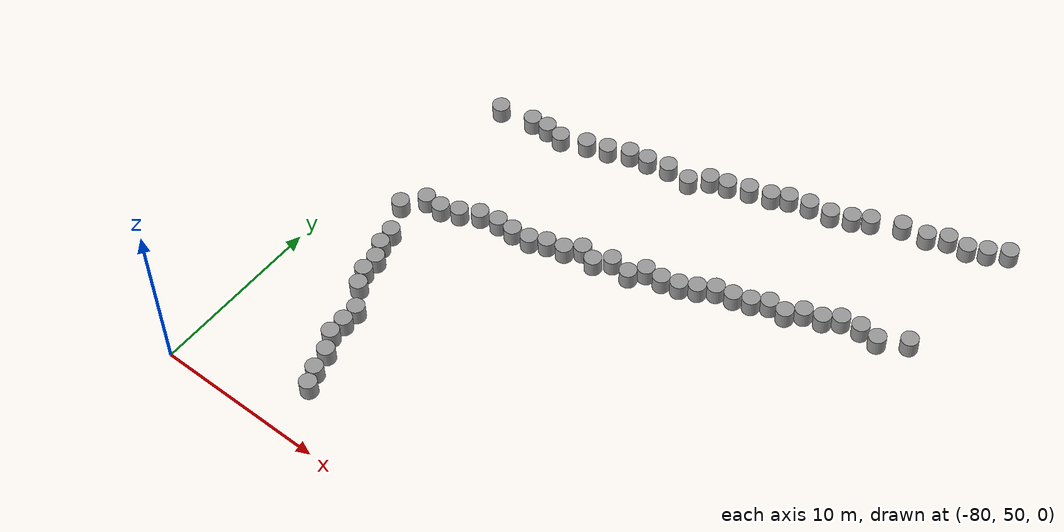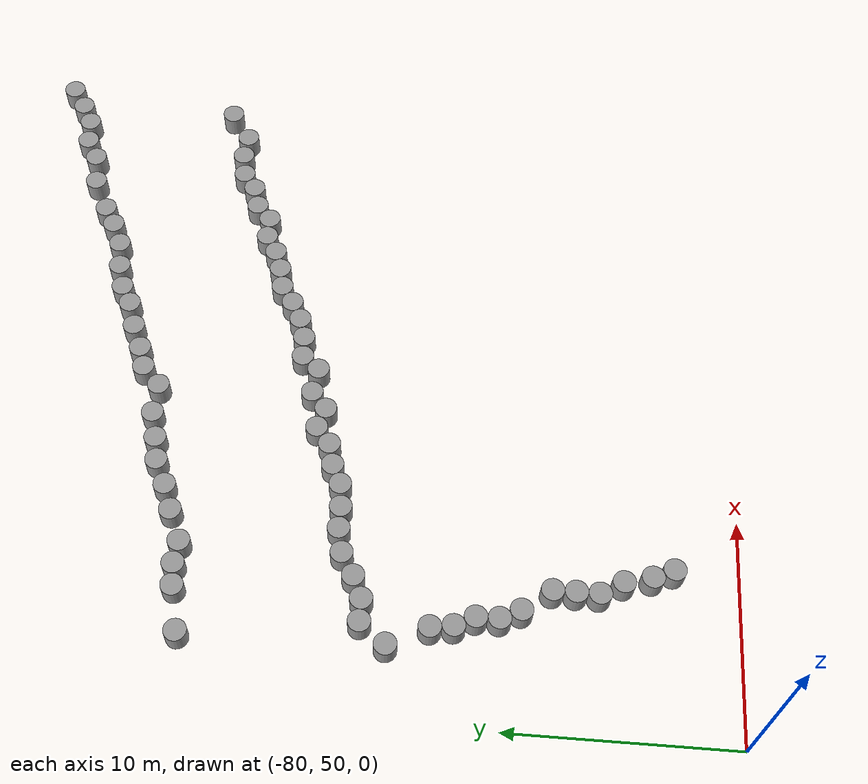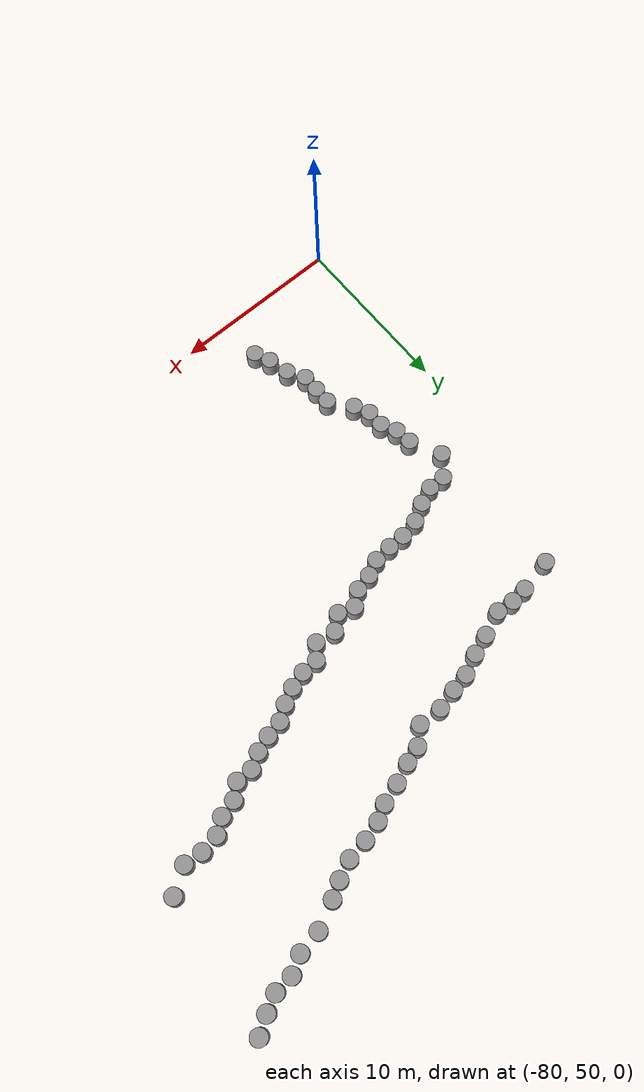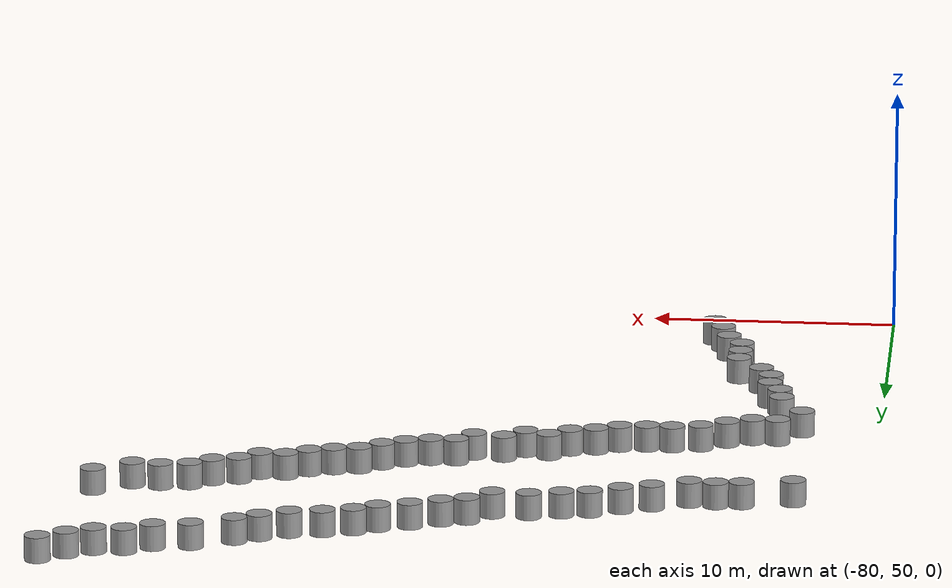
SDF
<sdf version="1.7">
 <world name="default">
  <model name="unit_cylinder_85_clone_12">
   <pose>-49.7823 74.5502 0.451242 8.3e-05 4.3e-05 -0.170976</pose>
   <link name="link">
    <inertial>
     <mass>1</mass>
     <inertia><ixx>0.145833</ixx><ixy>0</ixy><ixz>0</ixz><iyy>0.145833</iyy><iyz>0</iyz><izz>0.125</izz></inertia>
    </inertial>
    <collision name="collision">
     <geometry><cylinder><radius>0.5</radius><length>1</length></cylinder></geometry>
    </collision>
    <visual name="visual">
     <geometry><cylinder><radius>0.5</radius><length>1</length></cylinder></geometry>
     <material>
      <script><name>Gazebo/Grey</name><uri>file://media/materials/scripts/gazebo.material</uri></script>
     </material>
    </visual>
   </link>
  </model>
  <model name="unit_cylinder_85_clone_14">
   <pose>-51.2116 73.6203 0.451197 6.7e-05 2.4e-05 -0.036272</pose>
   <link name="link">
    <inertial>
     <mass>1</mass>
     <inertia><ixx>0.145833</ixx><ixy>0</ixy><ixz>0</ixz><iyy>0.145833</iyy><iyz>0</iyz><izz>0.125</izz></inertia>
    </inertial>
    <collision name="collision">
     <geometry><cylinder><radius>0.5</radius><length>1</length></cylinder></geometry>
    </collision>
    <visual name="visual">
     <geometry><cylinder><radius>0.5</radius><length>1</length></cylinder></geometry>
     <material>
      <script><name>Gazebo/Grey</name><uri>file://media/materials/scripts/gazebo.material</uri></script>
     </material>
    </visual>
   </link>
  </model>
  <model name="unit_cylinder_85_clone_15">
   <pose>-52.3258 73.7201 0.45124 9.2e-05 2.9e-05 -0.000174</pose>
   <link name="link">
    <inertial>
     <mass>1</mass>
     <inertia><ixx>0.145833</ixx><ixy>0</ixy><ixz>0</ixz><iyy>0.145833</iyy><iyz>0</iyz><izz>0.125</izz></inertia>
    </inertial>
    <collision name="collision">
     <geometry><cylinder><radius>0.5</radius><length>1</length></cylinder></geometry>
    </collision>
    <visual name="visual">
     <geometry><cylinder><radius>0.5</radius><length>1</length></cylinder></geometry>
     <material>
      <script><name>Gazebo/Grey</name><uri>file://media/materials/scripts/gazebo.material</uri></script>
     </material>
    </visual>
   </link>
  </model>
  <model name="unit_cylinder_86">
   <pose>-53.4502 73.5365 0.451256 0.000101 3.8e-05 -0.003441</pose>
   <link name="link">
    <inertial>
     <mass>1</mass>
     <inertia><ixx>0.145833</ixx><ixy>0</ixy><ixz>0</ixz><iyy>0.145833</iyy><iyz>0</iyz><izz>0.125</izz></inertia>
    </inertial>
    <collision name="collision">
     <geometry><cylinder><radius>0.5</radius><length>1</length></cylinder></geometry>
    </collision>
    <visual name="visual">
     <geometry><cylinder><radius>0.5</radius><length>1</length></cylinder></geometry>
     <material>
      <script><name>Gazebo/Grey</name><uri>file://media/materials/scripts/gazebo.material</uri></script>
     </material>
    </visual>
   </link>
  </model>
  <model name="unit_cylinder_87">
   <pose>-54.2635 72.9519 0.451228 9.7e-05 4.2e-05 -0.001779</pose>
   <link name="link">
    <inertial>
     <mass>1</mass>
     <inertia><ixx>0.145833</ixx><ixy>0</ixy><ixz>0</ixz><iyy>0.145833</iyy><iyz>0</iyz><izz>0.125</izz></inertia>
    </inertial>
    <collision name="collision">
     <geometry><cylinder><radius>0.5</radius><length>1</length></cylinder></geometry>
    </collision>
    <visual name="visual">
     <geometry><cylinder><radius>0.5</radius><length>1</length></cylinder></geometry>
     <material>
      <script><name>Gazebo/Grey</name><uri>file://media/materials/scripts/gazebo.material</uri></script>
     </material>
    </visual>
   </link>
  </model>
  <model name="unit_cylinder_85_clone_13">
   <pose>-55.2854 72.6778 0.451241 9.7e-05 4.1e-05 -0.031877</pose>
   <link name="link">
    <inertial>
     <mass>1</mass>
     <inertia><ixx>0.145833</ixx><ixy>0</ixy><ixz>0</ixz><iyy>0.145833</iyy><iyz>0</iyz><izz>0.125</izz></inertia>
    </inertial>
    <collision name="collision">
     <geometry><cylinder><radius>0.5</radius><length>1</length></cylinder></geometry>
    </collision>
    <visual name="visual">
     <geometry><cylinder><radius>0.5</radius><length>1</length></cylinder></geometry>
     <material>
      <script><name>Gazebo/Grey</name><uri>file://media/materials/scripts/gazebo.material</uri></script>
     </material>
    </visual>
   </link>
  </model>
  <model name="unit_cylinder_85_clone_16">
   <pose>-56.035 72.0028 0.451199 7.5e-05 2.5e-05 0.037726</pose>
   <link name="link">
    <inertial>
     <mass>1</mass>
     <inertia><ixx>0.145833</ixx><ixy>0</ixy><ixz>0</ixz><iyy>0.145833</iyy><iyz>0</iyz><izz>0.125</izz></inertia>
    </inertial>
    <collision name="collision">
     <geometry><cylinder><radius>0.5</radius><length>1</length></cylinder></geometry>
    </collision>
    <visual name="visual">
     <geometry><cylinder><radius>0.5</radius><length>1</length></cylinder></geometry>
     <material>
      <script><name>Gazebo/Grey</name><uri>file://media/materials/scripts/gazebo.material</uri></script>
     </material>
    </visual>
   </link>
  </model>
  <model name="unit_cylinder_85_clone_17">
   <pose>-57.0376 72.0113 0.451242 9.7e-05 4.2e-05 -0.044618</pose>
   <link name="link">
    <inertial>
     <mass>1</mass>
     <inertia><ixx>0.145833</ixx><ixy>0</ixy><ixz>0</ixz><iyy>0.145833</iyy><iyz>0</iyz><izz>0.125</izz></inertia>
    </inertial>
    <collision name="collision">
     <geometry><cylinder><radius>0.5</radius><length>1</length></cylinder></geometry>
    </collision>
    <visual name="visual">
     <geometry><cylinder><radius>0.5</radius><length>1</length></cylinder></geometry>
     <material>
      <script><name>Gazebo/Grey</name><uri>file://media/materials/scripts/gazebo.material</uri></script>
     </material>
    </visual>
   </link>
  </model>
  <model name="unit_cylinder_85_clone_18">
   <pose>-57.8981 71.5019 0.451223 0.000105 7e-06 0.179686</pose>
   <link name="link">
    <inertial>
     <mass>1</mass>
     <inertia><ixx>0.145833</ixx><ixy>0</ixy><ixz>0</ixz><iyy>0.145833</iyy><iyz>0</iyz><izz>0.125</izz></inertia>
    </inertial>
    <collision name="collision">
     <geometry><cylinder><radius>0.5</radius><length>1</length></cylinder></geometry>
    </collision>
    <visual name="visual">
     <geometry><cylinder><radius>0.5</radius><length>1</length></cylinder></geometry>
     <material>
      <script><name>Gazebo/Grey</name><uri>file://media/materials/scripts/gazebo.material</uri></script>
     </material>
    </visual>
   </link>
  </model>
  <model name="unit_cylinder_85_clone_19">
   <pose>-58.8467 71.1832 0.451222 9.2e-05 4.1e-05 -0.048296</pose>
   <link name="link">
    <inertial>
     <mass>1</mass>
     <inertia><ixx>0.145833</ixx><ixy>0</ixy><ixz>0</ixz><iyy>0.145833</iyy><iyz>0</iyz><izz>0.125</izz></inertia>
    </inertial>
    <collision name="collision">
     <geometry><cylinder><radius>0.5</radius><length>1</length></cylinder></geometry>
    </collision>
    <visual name="visual">
     <geometry><cylinder><radius>0.5</radius><length>1</length></cylinder></geometry>
     <material>
      <script><name>Gazebo/Grey</name><uri>file://media/materials/scripts/gazebo.material</uri></script>
     </material>
    </visual>
   </link>
  </model>
  <model name="unit_cylinder_85_clone_20">
   <pose>-59.8282 70.975 0.451243 0.000108 3.1e-05 0.090742</pose>
   <link name="link">
    <inertial>
     <mass>1</mass>
     <inertia><ixx>0.145833</ixx><ixy>0</ixy><ixz>0</ixz><iyy>0.145833</iyy><iyz>0</iyz><izz>0.125</izz></inertia>
    </inertial>
    <collision name="collision">
     <geometry><cylinder><radius>0.5</radius><length>1</length></cylinder></geometry>
    </collision>
    <visual name="visual">
     <geometry><cylinder><radius>0.5</radius><length>1</length></cylinder></geometry>
     <material>
      <script><name>Gazebo/Grey</name><uri>file://media/materials/scripts/gazebo.material</uri></script>
     </material>
    </visual>
   </link>
  </model>
  <model name="unit_cylinder_85_clone_21">
   <pose>-60.6619 70.4095 0.451216 8.3e-05 4.9e-05 -0.164523</pose>
   <link name="link">
    <inertial>
     <mass>1</mass>
     <inertia><ixx>0.145833</ixx><ixy>0</ixy><ixz>0</ixz><iyy>0.145833</iyy><iyz>0</iyz><izz>0.125</izz></inertia>
    </inertial>
    <collision name="collision">
     <geometry><cylinder><radius>0.5</radius><length>1</length></cylinder></geometry>
    </collision>
    <visual name="visual">
     <geometry><cylinder><radius>0.5</radius><length>1</length></cylinder></geometry>
     <material>
      <script><name>Gazebo/Grey</name><uri>file://media/materials/scripts/gazebo.material</uri></script>
     </material>
    </visual>
   </link>
  </model>
  <model name="unit_cylinder_85_clone_22">
   <pose>-61.552 69.9538 0.451193 7.9e-05 2.7e-05 0.007981</pose>
   <link name="link">
    <inertial>
     <mass>1</mass>
     <inertia><ixx>0.145833</ixx><ixy>0</ixy><ixz>0</ixz><iyy>0.145833</iyy><iyz>0</iyz><izz>0.125</izz></inertia>
    </inertial>
    <collision name="collision">
     <geometry><cylinder><radius>0.5</radius><length>1</length></cylinder></geometry>
    </collision>
    <visual name="visual">
     <geometry><cylinder><radius>0.5</radius><length>1</length></cylinder></geometry>
     <material>
      <script><name>Gazebo/Grey</name><uri>file://media/materials/scripts/gazebo.material</uri></script>
     </material>
    </visual>
   </link>
  </model>
  <model name="unit_cylinder_85_clone_23">
   <pose>-62.5222 69.6774 0.451215 8.7e-05 3.7e-05 -0.015353</pose>
   <link name="link">
    <inertial>
     <mass>1</mass>
     <inertia><ixx>0.145833</ixx><ixy>0</ixy><ixz>0</ixz><iyy>0.145833</iyy><iyz>0</iyz><izz>0.125</izz></inertia>
    </inertial>
    <collision name="collision">
     <geometry><cylinder><radius>0.5</radius><length>1</length></cylinder></geometry>
    </collision>
    <visual name="visual">
     <geometry><cylinder><radius>0.5</radius><length>1</length></cylinder></geometry>
     <material>
      <script><name>Gazebo/Grey</name><uri>file://media/materials/scripts/gazebo.material</uri></script>
     </material>
    </visual>
   </link>
  </model>
  <model name="unit_cylinder_85_clone_24">
   <pose>-63.5211 69.6307 0.451251 0.000112 4e-05 -0.008863</pose>
   <link name="link">
    <inertial>
     <mass>1</mass>
     <inertia><ixx>0.145833</ixx><ixy>0</ixy><ixz>0</ixz><iyy>0.145833</iyy><iyz>0</iyz><izz>0.125</izz></inertia>
    </inertial>
    <collision name="collision">
     <geometry><cylinder><radius>0.5</radius><length>1</length></cylinder></geometry>
    </collision>
    <visual name="visual">
     <geometry><cylinder><radius>0.5</radius><length>1</length></cylinder></geometry>
     <material>
      <script><name>Gazebo/Grey</name><uri>file://media/materials/scripts/gazebo.material</uri></script>
     </material>
    </visual>
   </link>
  </model>
  <model name="unit_cylinder_85_clone_25">
   <pose>-64.1488 68.8522 0.451187 9e-05 1e-05 0.025226</pose>
   <link name="link">
    <inertial>
     <mass>1</mass>
     <inertia><ixx>0.145833</ixx><ixy>0</ixy><ixz>0</ixz><iyy>0.145833</iyy><iyz>0</iyz><izz>0.125</izz></inertia>
    </inertial>
    <collision name="collision">
     <geometry><cylinder><radius>0.5</radius><length>1</length></cylinder></geometry>
    </collision>
    <visual name="visual">
     <geometry><cylinder><radius>0.5</radius><length>1</length></cylinder></geometry>
     <material>
      <script><name>Gazebo/Grey</name><uri>file://media/materials/scripts/gazebo.material</uri></script>
     </material>
    </visual>
   </link>
  </model>
  <model name="unit_cylinder_85_clone_26">
   <pose>-65.3525 69.02 0.451248 0.00011 3.4e-05 5.2e-05</pose>
   <link name="link">
    <inertial>
     <mass>1</mass>
     <inertia><ixx>0.145833</ixx><ixy>0</ixy><ixz>0</ixz><iyy>0.145833</iyy><iyz>0</iyz><izz>0.125</izz></inertia>
    </inertial>
    <collision name="collision">
     <geometry><cylinder><radius>0.5</radius><length>1</length></cylinder></geometry>
    </collision>
    <visual name="visual">
     <geometry><cylinder><radius>0.5</radius><length>1</length></cylinder></geometry>
     <material>
      <script><name>Gazebo/Grey</name><uri>file://media/materials/scripts/gazebo.material</uri></script>
     </material>
    </visual>
   </link>
  </model>
  <model name="unit_cylinder_85_clone_27">
   <pose>-66.1492 68.3273 0.451198 8.4e-05 2.9e-05 -0.031097</pose>
   <link name="link">
    <inertial>
     <mass>1</mass>
     <inertia><ixx>0.145833</ixx><ixy>0</ixy><ixz>0</ixz><iyy>0.145833</iyy><iyz>0</iyz><izz>0.125</izz></inertia>
    </inertial>
    <collision name="collision">
     <geometry><cylinder><radius>0.5</radius><length>1</length></cylinder></geometry>
    </collision>
    <visual name="visual">
     <geometry><cylinder><radius>0.5</radius><length>1</length></cylinder></geometry>
     <material>
      <script><name>Gazebo/Grey</name><uri>file://media/materials/scripts/gazebo.material</uri></script>
     </material>
    </visual>
   </link>
  </model>
  <model name="unit_cylinder_85_clone_28">
   <pose>-67.1077 68.6436 0.451264 0.00012 3.6e-05 -0.023749</pose>
   <link name="link">
    <inertial>
     <mass>1</mass>
     <inertia><ixx>0.145833</ixx><ixy>0</ixy><ixz>0</ixz><iyy>0.145833</iyy><iyz>0</iyz><izz>0.125</izz></inertia>
    </inertial>
    <collision name="collision">
     <geometry><cylinder><radius>0.5</radius><length>1</length></cylinder></geometry>
    </collision>
    <visual name="visual">
     <geometry><cylinder><radius>0.5</radius><length>1</length></cylinder></geometry>
     <material>
      <script><name>Gazebo/Grey</name><uri>file://media/materials/scripts/gazebo.material</uri></script>
     </material>
    </visual>
   </link>
  </model>
  <model name="unit_cylinder_85_clone_29">
   <pose>-67.8938 68.0013 0.451228 0.000111 3e-05 0.057063</pose>
   <link name="link">
    <inertial>
     <mass>1</mass>
     <inertia><ixx>0.145833</ixx><ixy>0</ixy><ixz>0</ixz><iyy>0.145833</iyy><iyz>0</iyz><izz>0.125</izz></inertia>
    </inertial>
    <collision name="collision">
     <geometry><cylinder><radius>0.5</radius><length>1</length></cylinder></geometry>
    </collision>
    <visual name="visual">
     <geometry><cylinder><radius>0.5</radius><length>1</length></cylinder></geometry>
     <material>
      <script><name>Gazebo/Grey</name><uri>file://media/materials/scripts/gazebo.material</uri></script>
     </material>
    </visual>
   </link>
  </model>
  <model name="unit_cylinder_85_clone_30">
   <pose>-68.8964 67.7676 0.451231 0.000108 3.8e-05 -0.036777</pose>
   <link name="link">
    <inertial>
     <mass>1</mass>
     <inertia><ixx>0.145833</ixx><ixy>0</ixy><ixz>0</ixz><iyy>0.145833</iyy><iyz>0</iyz><izz>0.125</izz></inertia>
    </inertial>
    <collision name="collision">
     <geometry><cylinder><radius>0.5</radius><length>1</length></cylinder></geometry>
    </collision>
    <visual name="visual">
     <geometry><cylinder><radius>0.5</radius><length>1</length></cylinder></geometry>
     <material>
      <script><name>Gazebo/Grey</name><uri>file://media/materials/scripts/gazebo.material</uri></script>
     </material>
    </visual>
   </link>
  </model>
  <model name="unit_cylinder_85_clone_31">
   <pose>-69.8048 67.3455 0.451217 9.4e-05 3e-05 -0.002426</pose>
   <link name="link">
    <inertial>
     <mass>1</mass>
     <inertia><ixx>0.145833</ixx><ixy>0</ixy><ixz>0</ixz><iyy>0.145833</iyy><iyz>0</iyz><izz>0.125</izz></inertia>
    </inertial>
    <collision name="collision">
     <geometry><cylinder><radius>0.5</radius><length>1</length></cylinder></geometry>
    </collision>
    <visual name="visual">
     <geometry><cylinder><radius>0.5</radius><length>1</length></cylinder></geometry>
     <material>
      <script><name>Gazebo/Grey</name><uri>file://media/materials/scripts/gazebo.material</uri></script>
     </material>
    </visual>
   </link>
  </model>
  <model name="unit_cylinder_85_clone_32">
   <pose>-70.8781 67.2267 0.451164 0.000114 -0.000151 -0.012569</pose>
   <link name="link">
    <inertial>
     <mass>1</mass>
     <inertia><ixx>0.145833</ixx><ixy>0</ixy><ixz>0</ixz><iyy>0.145833</iyy><iyz>0</iyz><izz>0.125</izz></inertia>
    </inertial>
    <collision name="collision">
     <geometry><cylinder><radius>0.5</radius><length>1</length></cylinder></geometry>
    </collision>
    <visual name="visual">
     <geometry><cylinder><radius>0.5</radius><length>1</length></cylinder></geometry>
     <material>
      <script><name>Gazebo/Grey</name><uri>file://media/materials/scripts/gazebo.material</uri></script>
     </material>
    </visual>
   </link>
  </model>
  <model name="unit_cylinder_85_clone_33">
   <pose>-71.8847 67.2242 0.450983 8.8e-05 -0.000152 -0.004584</pose>
   <link name="link">
    <inertial>
     <mass>1</mass>
     <inertia><ixx>0.145833</ixx><ixy>0</ixy><ixz>0</ixz><iyy>0.145833</iyy><iyz>0</iyz><izz>0.125</izz></inertia>
    </inertial>
    <collision name="collision">
     <geometry><cylinder><radius>0.5</radius><length>1</length></cylinder></geometry>
    </collision>
    <visual name="visual">
     <geometry><cylinder><radius>0.5</radius><length>1</length></cylinder></geometry>
     <material>
      <script><name>Gazebo/Grey</name><uri>file://media/materials/scripts/gazebo.material</uri></script>
     </material>
    </visual>
   </link>
  </model>
  <model name="unit_cylinder_85_clone_34">
   <pose>-73.0004 67 0.450803 7.9e-05 -0.000145 0.000202</pose>
   <link name="link">
    <inertial>
     <mass>1</mass>
     <inertia><ixx>0.145833</ixx><ixy>0</ixy><ixz>0</ixz><iyy>0.145833</iyy><iyz>0</iyz><izz>0.125</izz></inertia>
    </inertial>
    <collision name="collision">
     <geometry><cylinder><radius>0.5</radius><length>1</length></cylinder></geometry>
    </collision>
    <visual name="visual">
     <geometry><cylinder><radius>0.5</radius><length>1</length></cylinder></geometry>
     <material>
      <script><name>Gazebo/Grey</name><uri>file://media/materials/scripts/gazebo.material</uri></script>
     </material>
    </visual>
   </link>
  </model>
  <model name="unit_cylinder_85_clone_35">
   <pose>-74.0004 66.4218 0.450611 6.1e-05 -0.000154 0.000406</pose>
   <link name="link">
    <inertial>
     <mass>1</mass>
     <inertia><ixx>0.145833</ixx><ixy>0</ixy><ixz>0</ixz><iyy>0.145833</iyy><iyz>0</iyz><izz>0.125</izz></inertia>
    </inertial>
    <collision name="collision">
     <geometry><cylinder><radius>0.5</radius><length>1</length></cylinder></geometry>
    </collision>
    <visual name="visual">
     <geometry><cylinder><radius>0.5</radius><length>1</length></cylinder></geometry>
     <material>
      <script><name>Gazebo/Grey</name><uri>file://media/materials/scripts/gazebo.material</uri></script>
     </material>
    </visual>
   </link>
  </model>
  <model name="unit_cylinder_85_clone_36">
   <pose>-74.9997 66.0002 0.45043 5.4e-05 -0.000157 0.000768</pose>
   <link name="link">
    <inertial>
     <mass>1</mass>
     <inertia><ixx>0.145833</ixx><ixy>0</ixy><ixz>0</ixz><iyy>0.145833</iyy><iyz>0</iyz><izz>0.125</izz></inertia>
    </inertial>
    <collision name="collision">
     <geometry><cylinder><radius>0.5</radius><length>1</length></cylinder></geometry>
    </collision>
    <visual name="visual">
     <geometry><cylinder><radius>0.5</radius><length>1</length></cylinder></geometry>
     <material>
      <script><name>Gazebo/Grey</name><uri>file://media/materials/scripts/gazebo.material</uri></script>
     </material>
    </visual>
   </link>
  </model>
  <model name="unit_cylinder_85_clone_37">
   <pose>-75.9999 66.0001 0.450279 5.4e-05 -0.000166 0.000437</pose>
   <link name="link">
    <inertial>
     <mass>1</mass>
     <inertia><ixx>0.145833</ixx><ixy>0</ixy><ixz>0</ixz><iyy>0.145833</iyy><iyz>0</iyz><izz>0.125</izz></inertia>
    </inertial>
    <collision name="collision">
     <geometry><cylinder><radius>0.5</radius><length>1</length></cylinder></geometry>
    </collision>
    <visual name="visual">
     <geometry><cylinder><radius>0.5</radius><length>1</length></cylinder></geometry>
     <material>
      <script><name>Gazebo/Grey</name><uri>file://media/materials/scripts/gazebo.material</uri></script>
     </material>
    </visual>
   </link>
  </model>
  <model name="unit_cylinder_85_clone_39">
   <pose>-72.7025 52.8624 0.450057 5e-05 -0.000151 0.018886</pose>
   <link name="link">
    <inertial>
     <mass>1</mass>
     <inertia><ixx>0.145833</ixx><ixy>0</ixy><ixz>0</ixz><iyy>0.145833</iyy><iyz>0</iyz><izz>0.125</izz></inertia>
    </inertial>
    <collision name="collision">
     <geometry><cylinder><radius>0.5</radius><length>1</length></cylinder></geometry>
    </collision>
    <visual name="visual">
     <geometry><cylinder><radius>0.5</radius><length>1</length></cylinder></geometry>
     <material>
      <script><name>Gazebo/Grey</name><uri>file://media/materials/scripts/gazebo.material</uri></script>
     </material>
    </visual>
   </link>
  </model>
  <model name="unit_cylinder_85_clone_68">
   <pose>-48.8364 82.7937 0.455283 0.005186 0.001659 0.000729</pose>
   <link name="link">
    <inertial>
     <mass>1</mass>
     <inertia><ixx>0.145833</ixx><ixy>0</ixy><ixz>0</ixz><iyy>0.145833</iyy><iyz>0</iyz><izz>0.125</izz></inertia>
    </inertial>
    <collision name="collision">
     <geometry><cylinder><radius>0.5</radius><length>1</length></cylinder></geometry>
    </collision>
    <visual name="visual">
     <geometry><cylinder><radius>0.5</radius><length>1</length></cylinder></geometry>
     <material>
      <script><name>Gazebo/Grey</name><uri>file://media/materials/scripts/gazebo.material</uri></script>
     </material>
    </visual>
   </link>
  </model>
  <model name="unit_cylinder_85_clone_69">
   <pose>-49.8362 82.1548 0.453816 0.004825 0.001587 -0.008325</pose>
   <link name="link">
    <inertial>
     <mass>1</mass>
     <inertia><ixx>0.145833</ixx><ixy>0</ixy><ixz>0</ixz><iyy>0.145833</iyy><iyz>0</iyz><izz>0.125</izz></inertia>
    </inertial>
    <collision name="collision">
     <geometry><cylinder><radius>0.5</radius><length>1</length></cylinder></geometry>
    </collision>
    <visual name="visual">
     <geometry><cylinder><radius>0.5</radius><length>1</length></cylinder></geometry>
     <material>
      <script><name>Gazebo/Grey</name><uri>file://media/materials/scripts/gazebo.material</uri></script>
     </material>
    </visual>
   </link>
  </model>
  <model name="unit_cylinder_85_clone_70">
   <pose>-50.8238 81.6593 0.453005 0.004608 0.001481 -0.000188</pose>
   <link name="link">
    <inertial>
     <mass>1</mass>
     <inertia><ixx>0.145833</ixx><ixy>0</ixy><ixz>0</ixz><iyy>0.145833</iyy><iyz>0</iyz><izz>0.125</izz></inertia>
    </inertial>
    <collision name="collision">
     <geometry><cylinder><radius>0.5</radius><length>1</length></cylinder></geometry>
    </collision>
    <visual name="visual">
     <geometry><cylinder><radius>0.5</radius><length>1</length></cylinder></geometry>
     <material>
      <script><name>Gazebo/Grey</name><uri>file://media/materials/scripts/gazebo.material</uri></script>
     </material>
    </visual>
   </link>
  </model>
  <model name="unit_cylinder_85_clone_71">
   <pose>-51.9743 81.5605 0.454106 0.005194 0.001661 0.001469</pose>
   <link name="link">
    <inertial>
     <mass>1</mass>
     <inertia><ixx>0.145833</ixx><ixy>0</ixy><ixz>0</ixz><iyy>0.145833</iyy><iyz>0</iyz><izz>0.125</izz></inertia>
    </inertial>
    <collision name="collision">
     <geometry><cylinder><radius>0.5</radius><length>1</length></cylinder></geometry>
    </collision>
    <visual name="visual">
     <geometry><cylinder><radius>0.5</radius><length>1</length></cylinder></geometry>
     <material>
      <script><name>Gazebo/Grey</name><uri>file://media/materials/scripts/gazebo.material</uri></script>
     </material>
    </visual>
   </link>
  </model>
  <model name="unit_cylinder_85_clone_72">
   <pose>-52.999 80.9962 0.45318 0.004642 0.001486 -0.000499</pose>
   <link name="link">
    <inertial>
     <mass>1</mass>
     <inertia><ixx>0.145833</ixx><ixy>0</ixy><ixz>0</ixz><iyy>0.145833</iyy><iyz>0</iyz><izz>0.125</izz></inertia>
    </inertial>
    <collision name="collision">
     <geometry><cylinder><radius>0.5</radius><length>1</length></cylinder></geometry>
    </collision>
    <visual name="visual">
     <geometry><cylinder><radius>0.5</radius><length>1</length></cylinder></geometry>
     <material>
      <script><name>Gazebo/Grey</name><uri>file://media/materials/scripts/gazebo.material</uri></script>
     </material>
    </visual>
   </link>
  </model>
  <model name="unit_cylinder_85_clone_73">
   <pose>-54.4253 80.7453 0.454117 0.005105 0.001952 0.000102</pose>
   <link name="link">
    <inertial>
     <mass>1</mass>
     <inertia><ixx>0.145833</ixx><ixy>0</ixy><ixz>0</ixz><iyy>0.145833</iyy><iyz>0</iyz><izz>0.125</izz></inertia>
    </inertial>
    <collision name="collision">
     <geometry><cylinder><radius>0.5</radius><length>1</length></cylinder></geometry>
    </collision>
    <visual name="visual">
     <geometry><cylinder><radius>0.5</radius><length>1</length></cylinder></geometry>
     <material>
      <script><name>Gazebo/Grey</name><uri>file://media/materials/scripts/gazebo.material</uri></script>
     </material>
    </visual>
   </link>
  </model>
  <model name="unit_cylinder_85_clone_74">
   <pose>-55.9988 79.9967 0.453632 0.004607 0.001776 -0.001229</pose>
   <link name="link">
    <inertial>
     <mass>1</mass>
     <inertia><ixx>0.145833</ixx><ixy>0</ixy><ixz>0</ixz><iyy>0.145833</iyy><iyz>0</iyz><izz>0.125</izz></inertia>
    </inertial>
    <collision name="collision">
     <geometry><cylinder><radius>0.5</radius><length>1</length></cylinder></geometry>
    </collision>
    <visual name="visual">
     <geometry><cylinder><radius>0.5</radius><length>1</length></cylinder></geometry>
     <material>
      <script><name>Gazebo/Grey</name><uri>file://media/materials/scripts/gazebo.material</uri></script>
     </material>
    </visual>
   </link>
  </model>
  <model name="unit_cylinder_85_clone_75">
   <pose>-56.9007 79.4766 0.452803 0.004504 0.00173 7.5e-05</pose>
   <link name="link">
    <inertial>
     <mass>1</mass>
     <inertia><ixx>0.145833</ixx><ixy>0</ixy><ixz>0</ixz><iyy>0.145833</iyy><iyz>0</iyz><izz>0.125</izz></inertia>
    </inertial>
    <collision name="collision">
     <geometry><cylinder><radius>0.5</radius><length>1</length></cylinder></geometry>
    </collision>
    <visual name="visual">
     <geometry><cylinder><radius>0.5</radius><length>1</length></cylinder></geometry>
     <material>
      <script><name>Gazebo/Grey</name><uri>file://media/materials/scripts/gazebo.material</uri></script>
     </material>
    </visual>
   </link>
  </model>
  <model name="unit_cylinder_85_clone_76">
   <pose>-57.999 78.9968 0.452532 0.004469 0.001716 3e-06</pose>
   <link name="link">
    <inertial>
     <mass>1</mass>
     <inertia><ixx>0.145833</ixx><ixy>0</ixy><ixz>0</ixz><iyy>0.145833</iyy><iyz>0</iyz><izz>0.125</izz></inertia>
    </inertial>
    <collision name="collision">
     <geometry><cylinder><radius>0.5</radius><length>1</length></cylinder></geometry>
    </collision>
    <visual name="visual">
     <geometry><cylinder><radius>0.5</radius><length>1</length></cylinder></geometry>
     <material>
      <script><name>Gazebo/Grey</name><uri>file://media/materials/scripts/gazebo.material</uri></script>
     </material>
    </visual>
   </link>
  </model>
  <model name="unit_cylinder_85_clone_77">
   <pose>-59.254 78.7965 0.45382 0.004751 0.001829 -0.001929</pose>
   <link name="link">
    <inertial>
     <mass>1</mass>
     <inertia><ixx>0.145833</ixx><ixy>0</ixy><ixz>0</ixz><iyy>0.145833</iyy><iyz>0</iyz><izz>0.125</izz></inertia>
    </inertial>
    <collision name="collision">
     <geometry><cylinder><radius>0.5</radius><length>1</length></cylinder></geometry>
    </collision>
    <visual name="visual">
     <geometry><cylinder><radius>0.5</radius><length>1</length></cylinder></geometry>
     <material>
      <script><name>Gazebo/Grey</name><uri>file://media/materials/scripts/gazebo.material</uri></script>
     </material>
    </visual>
   </link>
  </model>
  <model name="unit_cylinder_85_clone_78">
   <pose>-60.4092 78.4694 0.454231 0.005183 0.001768 0.038217</pose>
   <link name="link">
    <inertial>
     <mass>1</mass>
     <inertia><ixx>0.145833</ixx><ixy>0</ixy><ixz>0</ixz><iyy>0.145833</iyy><iyz>0</iyz><izz>0.125</izz></inertia>
    </inertial>
    <collision name="collision">
     <geometry><cylinder><radius>0.5</radius><length>1</length></cylinder></geometry>
    </collision>
    <visual name="visual">
     <geometry><cylinder><radius>0.5</radius><length>1</length></cylinder></geometry>
     <material>
      <script><name>Gazebo/Grey</name><uri>file://media/materials/scripts/gazebo.material</uri></script>
     </material>
    </visual>
   </link>
  </model>
  <model name="unit_cylinder_85_clone_79">
   <pose>-61.2917 77.9857 0.453744 0.004605 0.00185 -0.015721</pose>
   <link name="link">
    <inertial>
     <mass>1</mass>
     <inertia><ixx>0.145833</ixx><ixy>0</ixy><ixz>0</ixz><iyy>0.145833</iyy><iyz>0</iyz><izz>0.125</izz></inertia>
    </inertial>
    <collision name="collision">
     <geometry><cylinder><radius>0.5</radius><length>1</length></cylinder></geometry>
    </collision>
    <visual name="visual">
     <geometry><cylinder><radius>0.5</radius><length>1</length></cylinder></geometry>
     <material>
      <script><name>Gazebo/Grey</name><uri>file://media/materials/scripts/gazebo.material</uri></script>
     </material>
    </visual>
   </link>
  </model>
  <model name="unit_cylinder_85_clone_80">
   <pose>-62.4933 77.6042 0.453959 0.004977 0.001948 -0.004281</pose>
   <link name="link">
    <inertial>
     <mass>1</mass>
     <inertia><ixx>0.145833</ixx><ixy>0</ixy><ixz>0</ixz><iyy>0.145833</iyy><iyz>0</iyz><izz>0.125</izz></inertia>
    </inertial>
    <collision name="collision">
     <geometry><cylinder><radius>0.5</radius><length>1</length></cylinder></geometry>
    </collision>
    <visual name="visual">
     <geometry><cylinder><radius>0.5</radius><length>1</length></cylinder></geometry>
     <material>
      <script><name>Gazebo/Grey</name><uri>file://media/materials/scripts/gazebo.material</uri></script>
     </material>
    </visual>
   </link>
  </model>
  <model name="unit_cylinder_85_clone_81">
   <pose>-63.64 77.1315 0.453867 0.004839 0.001855 -0.001559</pose>
   <link name="link">
    <inertial>
     <mass>1</mass>
     <inertia><ixx>0.145833</ixx><ixy>0</ixy><ixz>0</ixz><iyy>0.145833</iyy><iyz>0</iyz><izz>0.125</izz></inertia>
    </inertial>
    <collision name="collision">
     <geometry><cylinder><radius>0.5</radius><length>1</length></cylinder></geometry>
    </collision>
    <visual name="visual">
     <geometry><cylinder><radius>0.5</radius><length>1</length></cylinder></geometry>
     <material>
      <script><name>Gazebo/Grey</name><uri>file://media/materials/scripts/gazebo.material</uri></script>
     </material>
    </visual>
   </link>
  </model>
  <model name="unit_cylinder_85_clone_82">
   <pose>-64.621 76.8258 0.454087 0.0051 0.001949 0.000201</pose>
   <link name="link">
    <inertial>
     <mass>1</mass>
     <inertia><ixx>0.145833</ixx><ixy>0</ixy><ixz>0</ixz><iyy>0.145833</iyy><iyz>0</iyz><izz>0.125</izz></inertia>
    </inertial>
    <collision name="collision">
     <geometry><cylinder><radius>0.5</radius><length>1</length></cylinder></geometry>
    </collision>
    <visual name="visual">
     <geometry><cylinder><radius>0.5</radius><length>1</length></cylinder></geometry>
     <material>
      <script><name>Gazebo/Grey</name><uri>file://media/materials/scripts/gazebo.material</uri></script>
     </material>
    </visual>
   </link>
  </model>
  <model name="unit_cylinder_85_clone_83">
   <pose>-65.5172 75.9967 0.451709 0.004393 0.001343 0.000157</pose>
   <link name="link">
    <inertial>
     <mass>1</mass>
     <inertia><ixx>0.145833</ixx><ixy>0</ixy><ixz>0</ixz><iyy>0.145833</iyy><iyz>0</iyz><izz>0.125</izz></inertia>
    </inertial>
    <collision name="collision">
     <geometry><cylinder><radius>0.5</radius><length>1</length></cylinder></geometry>
    </collision>
    <visual name="visual">
     <geometry><cylinder><radius>0.5</radius><length>1</length></cylinder></geometry>
     <material>
      <script><name>Gazebo/Grey</name><uri>file://media/materials/scripts/gazebo.material</uri></script>
     </material>
    </visual>
   </link>
  </model>
  <model name="unit_cylinder_85_clone_84">
   <pose>-66.9386 76.0529 0.453938 0.005076 0.001556 -0.001267</pose>
   <link name="link">
    <inertial>
     <mass>1</mass>
     <inertia><ixx>0.145833</ixx><ixy>0</ixy><ixz>0</ixz><iyy>0.145833</iyy><iyz>0</iyz><izz>0.125</izz></inertia>
    </inertial>
    <collision name="collision">
     <geometry><cylinder><radius>0.5</radius><length>1</length></cylinder></geometry>
    </collision>
    <visual name="visual">
     <geometry><cylinder><radius>0.5</radius><length>1</length></cylinder></geometry>
     <material>
      <script><name>Gazebo/Grey</name><uri>file://media/materials/scripts/gazebo.material</uri></script>
     </material>
    </visual>
   </link>
  </model>
  <model name="unit_cylinder_85_clone_85">
   <pose>-68.1741 75.7458 0.45425 0.005233 0.001606 0.001185</pose>
   <link name="link">
    <inertial>
     <mass>1</mass>
     <inertia><ixx>0.145833</ixx><ixy>0</ixy><ixz>0</ixz><iyy>0.145833</iyy><iyz>0</iyz><izz>0.125</izz></inertia>
    </inertial>
    <collision name="collision">
     <geometry><cylinder><radius>0.5</radius><length>1</length></cylinder></geometry>
    </collision>
    <visual name="visual">
     <geometry><cylinder><radius>0.5</radius><length>1</length></cylinder></geometry>
     <material>
      <script><name>Gazebo/Grey</name><uri>file://media/materials/scripts/gazebo.material</uri></script>
     </material>
    </visual>
   </link>
  </model>
  <model name="unit_cylinder_85_clone_86">
   <pose>-69.2517 75.537 0.454887 0.005221 0.001606 0.00026</pose>
   <link name="link">
    <inertial>
     <mass>1</mass>
     <inertia><ixx>0.145833</ixx><ixy>0</ixy><ixz>0</ixz><iyy>0.145833</iyy><iyz>0</iyz><izz>0.125</izz></inertia>
    </inertial>
    <collision name="collision">
     <geometry><cylinder><radius>0.5</radius><length>1</length></cylinder></geometry>
    </collision>
    <visual name="visual">
     <geometry><cylinder><radius>0.5</radius><length>1</length></cylinder></geometry>
     <material>
      <script><name>Gazebo/Grey</name><uri>file://media/materials/scripts/gazebo.material</uri></script>
     </material>
    </visual>
   </link>
  </model>
  <model name="unit_cylinder_85_clone_87">
   <pose>-70.4117 74.9983 0.453969 0.005122 0.001641 -0.012411</pose>
   <link name="link">
    <inertial>
     <mass>1</mass>
     <inertia><ixx>0.145833</ixx><ixy>0</ixy><ixz>0</ixz><iyy>0.145833</iyy><iyz>0</iyz><izz>0.125</izz></inertia>
    </inertial>
    <collision name="collision">
     <geometry><cylinder><radius>0.5</radius><length>1</length></cylinder></geometry>
    </collision>
    <visual name="visual">
     <geometry><cylinder><radius>0.5</radius><length>1</length></cylinder></geometry>
     <material>
      <script><name>Gazebo/Grey</name><uri>file://media/materials/scripts/gazebo.material</uri></script>
     </material>
    </visual>
   </link>
  </model>
  <model name="unit_cylinder_85_clone_88">
   <pose>-71.5844 74.5771 0.453519 0.004857 0.000825 -0.005257</pose>
   <link name="link">
    <inertial>
     <mass>1</mass>
     <inertia><ixx>0.145833</ixx><ixy>0</ixy><ixz>0</ixz><iyy>0.145833</iyy><iyz>0</iyz><izz>0.125</izz></inertia>
    </inertial>
    <collision name="collision">
     <geometry><cylinder><radius>0.5</radius><length>1</length></cylinder></geometry>
    </collision>
    <visual name="visual">
     <geometry><cylinder><radius>0.5</radius><length>1</length></cylinder></geometry>
     <material>
      <script><name>Gazebo/Grey</name><uri>file://media/materials/scripts/gazebo.material</uri></script>
     </material>
    </visual>
   </link>
  </model>
  <model name="unit_cylinder_85_clone_89">
   <pose>-72.9994 73.9966 0.451792 0.004638 0.000753 6.5e-05</pose>
   <link name="link">
    <inertial>
     <mass>1</mass>
     <inertia><ixx>0.145833</ixx><ixy>0</ixy><ixz>0</ixz><iyy>0.145833</iyy><iyz>0</iyz><izz>0.125</izz></inertia>
    </inertial>
    <collision name="collision">
     <geometry><cylinder><radius>0.5</radius><length>1</length></cylinder></geometry>
    </collision>
    <visual name="visual">
     <geometry><cylinder><radius>0.5</radius><length>1</length></cylinder></geometry>
     <material>
      <script><name>Gazebo/Grey</name><uri>file://media/materials/scripts/gazebo.material</uri></script>
     </material>
    </visual>
   </link>
  </model>
  <model name="unit_cylinder_85_clone_90">
   <pose>-74.0296 74.096 0.453141 0.004852 0.000829 0.00612</pose>
   <link name="link">
    <inertial>
     <mass>1</mass>
     <inertia><ixx>0.145833</ixx><ixy>0</ixy><ixz>0</ixz><iyy>0.145833</iyy><iyz>0</iyz><izz>0.125</izz></inertia>
    </inertial>
    <collision name="collision">
     <geometry><cylinder><radius>0.5</radius><length>1</length></cylinder></geometry>
    </collision>
    <visual name="visual">
     <geometry><cylinder><radius>0.5</radius><length>1</length></cylinder></geometry>
     <material>
      <script><name>Gazebo/Grey</name><uri>file://media/materials/scripts/gazebo.material</uri></script>
     </material>
    </visual>
   </link>
  </model>
  <model name="unit_cylinder_85_clone_91">
   <pose>-75.0245 73.9944 0.453217 0.00538 0.000864 0.006694</pose>
   <link name="link">
    <inertial>
     <mass>1</mass>
     <inertia><ixx>0.145833</ixx><ixy>0</ixy><ixz>0</ixz><iyy>0.145833</iyy><iyz>0</iyz><izz>0.125</izz></inertia>
    </inertial>
    <collision name="collision">
     <geometry><cylinder><radius>0.5</radius><length>1</length></cylinder></geometry>
    </collision>
    <visual name="visual">
     <geometry><cylinder><radius>0.5</radius><length>1</length></cylinder></geometry>
     <material>
      <script><name>Gazebo/Grey</name><uri>file://media/materials/scripts/gazebo.material</uri></script>
     </material>
    </visual>
   </link>
  </model>
  <model name="unit_cylinder_85_clone_92">
   <pose>-77.0031 73.5715 0.452948 0.005585 0.00114 -0.000327</pose>
   <link name="link">
    <inertial>
     <mass>1</mass>
     <inertia><ixx>0.145833</ixx><ixy>0</ixy><ixz>0</ixz><iyy>0.145833</iyy><iyz>0</iyz><izz>0.125</izz></inertia>
    </inertial>
    <collision name="collision">
     <geometry><cylinder><radius>0.5</radius><length>1</length></cylinder></geometry>
    </collision>
    <visual name="visual">
     <geometry><cylinder><radius>0.5</radius><length>1</length></cylinder></geometry>
     <material>
      <script><name>Gazebo/Grey</name><uri>file://media/materials/scripts/gazebo.material</uri></script>
     </material>
    </visual>
   </link>
  </model>
  <model name="unit_cylinder_85_clone_149">
   <pose>-73.1048 53.7781 0.450044 5.9e-05 -0.00016 -0.00616</pose>
   <link name="link">
    <inertial>
     <mass>1</mass>
     <inertia><ixx>0.145833</ixx><ixy>0</ixy><ixz>0</ixz><iyy>0.145833</iyy><iyz>0</iyz><izz>0.125</izz></inertia>
    </inertial>
    <collision name="collision">
     <geometry><cylinder><radius>0.5</radius><length>1</length></cylinder></geometry>
    </collision>
    <visual name="visual">
     <geometry><cylinder><radius>0.5</radius><length>1</length></cylinder></geometry>
     <material>
      <script><name>Gazebo/Grey</name><uri>file://media/materials/scripts/gazebo.material</uri></script>
     </material>
    </visual>
   </link>
  </model>
  <model name="unit_cylinder_85_clone_150">
   <pose>-73.4117 54.997 0.450058 5.5e-05 -0.000156 0.001374</pose>
   <link name="link">
    <inertial>
     <mass>1</mass>
     <inertia><ixx>0.145833</ixx><ixy>0</ixy><ixz>0</ixz><iyy>0.145833</iyy><iyz>0</iyz><izz>0.125</izz></inertia>
    </inertial>
    <collision name="collision">
     <geometry><cylinder><radius>0.5</radius><length>1</length></cylinder></geometry>
    </collision>
    <visual name="visual">
     <geometry><cylinder><radius>0.5</radius><length>1</length></cylinder></geometry>
     <material>
      <script><name>Gazebo/Grey</name><uri>file://media/materials/scripts/gazebo.material</uri></script>
     </material>
    </visual>
   </link>
  </model>
  <model name="unit_cylinder_85_clone_152">
   <pose>-74.0001 56 0.450029 6e-05 -0.000158 0.000253</pose>
   <link name="link">
    <inertial>
     <mass>1</mass>
     <inertia><ixx>0.145833</ixx><ixy>0</ixy><ixz>0</ixz><iyy>0.145833</iyy><iyz>0</iyz><izz>0.125</izz></inertia>
    </inertial>
    <collision name="collision">
     <geometry><cylinder><radius>0.5</radius><length>1</length></cylinder></geometry>
    </collision>
    <visual name="visual">
     <geometry><cylinder><radius>0.5</radius><length>1</length></cylinder></geometry>
     <material>
      <script><name>Gazebo/Grey</name><uri>file://media/materials/scripts/gazebo.material</uri></script>
     </material>
    </visual>
   </link>
  </model>
  <model name="unit_cylinder_85_clone_153">
   <pose>-74 57.0002 0.450087 5.6e-05 -0.000157 0.000265</pose>
   <link name="link">
    <inertial>
     <mass>1</mass>
     <inertia><ixx>0.145833</ixx><ixy>0</ixy><ixz>0</ixz><iyy>0.145833</iyy><iyz>0</iyz><izz>0.125</izz></inertia>
    </inertial>
    <collision name="collision">
     <geometry><cylinder><radius>0.5</radius><length>1</length></cylinder></geometry>
    </collision>
    <visual name="visual">
     <geometry><cylinder><radius>0.5</radius><length>1</length></cylinder></geometry>
     <material>
      <script><name>Gazebo/Grey</name><uri>file://media/materials/scripts/gazebo.material</uri></script>
     </material>
    </visual>
   </link>
  </model>
  <model name="unit_cylinder_85_clone_156">
   <pose>-74.9765 59.27 0.450054 5.9e-05 -0.000157 -0.011699</pose>
   <link name="link">
    <inertial>
     <mass>1</mass>
     <inertia><ixx>0.145833</ixx><ixy>0</ixy><ixz>0</ixz><iyy>0.145833</iyy><iyz>0</iyz><izz>0.125</izz></inertia>
    </inertial>
    <collision name="collision">
     <geometry><cylinder><radius>0.5</radius><length>1</length></cylinder></geometry>
    </collision>
    <visual name="visual">
     <geometry><cylinder><radius>0.5</radius><length>1</length></cylinder></geometry>
     <material>
      <script><name>Gazebo/Grey</name><uri>file://media/materials/scripts/gazebo.material</uri></script>
     </material>
    </visual>
   </link>
  </model>
  <model name="unit_cylinder_85_clone_157">
   <pose>-75.4148 60.1689 0.450038 5.8e-05 -0.000158 0.00607</pose>
   <link name="link">
    <inertial>
     <mass>1</mass>
     <inertia><ixx>0.145833</ixx><ixy>0</ixy><ixz>0</ixz><iyy>0.145833</iyy><iyz>0</iyz><izz>0.125</izz></inertia>
    </inertial>
    <collision name="collision">
     <geometry><cylinder><radius>0.5</radius><length>1</length></cylinder></geometry>
    </collision>
    <visual name="visual">
     <geometry><cylinder><radius>0.5</radius><length>1</length></cylinder></geometry>
     <material>
      <script><name>Gazebo/Grey</name><uri>file://media/materials/scripts/gazebo.material</uri></script>
     </material>
    </visual>
   </link>
  </model>
  <model name="unit_cylinder_85_clone_160">
   <pose>-76.906 64.8486 0.450068 5.5e-05 -0.000158 0.007281</pose>
   <link name="link">
    <inertial>
     <mass>1</mass>
     <inertia><ixx>0.145833</ixx><ixy>0</ixy><ixz>0</ixz><iyy>0.145833</iyy><iyz>0</iyz><izz>0.125</izz></inertia>
    </inertial>
    <collision name="collision">
     <geometry><cylinder><radius>0.5</radius><length>1</length></cylinder></geometry>
    </collision>
    <visual name="visual">
     <geometry><cylinder><radius>0.5</radius><length>1</length></cylinder></geometry>
     <material>
      <script><name>Gazebo/Grey</name><uri>file://media/materials/scripts/gazebo.material</uri></script>
     </material>
    </visual>
   </link>
  </model>
  <model name="unit_cylinder_85_clone_151">
   <pose>-75.4317 61.1689 0.450094 5.3e-05 -0.000157 0.015641</pose>
   <link name="link">
    <inertial>
     <mass>1</mass>
     <inertia><ixx>0.145833</ixx><ixy>0</ixy><ixz>0</ixz><iyy>0.145833</iyy><iyz>0</iyz><izz>0.125</izz></inertia>
    </inertial>
    <collision name="collision">
     <geometry><cylinder><radius>0.5</radius><length>1</length></cylinder></geometry>
    </collision>
    <visual name="visual">
     <geometry><cylinder><radius>0.5</radius><length>1</length></cylinder></geometry>
     <material>
      <script><name>Gazebo/Grey</name><uri>file://media/materials/scripts/gazebo.material</uri></script>
     </material>
    </visual>
   </link>
  </model>
  <model name="unit_cylinder_85_clone_154">
   <pose>-75.8809 62.0633 0.450074 5.1e-05 -0.000158 0.029222</pose>
   <link name="link">
    <inertial>
     <mass>1</mass>
     <inertia><ixx>0.145833</ixx><ixy>0</ixy><ixz>0</ixz><iyy>0.145833</iyy><iyz>0</iyz><izz>0.125</izz></inertia>
    </inertial>
    <collision name="collision">
     <geometry><cylinder><radius>0.5</radius><length>1</length></cylinder></geometry>
    </collision>
    <visual name="visual">
     <geometry><cylinder><radius>0.5</radius><length>1</length></cylinder></geometry>
     <material>
      <script><name>Gazebo/Grey</name><uri>file://media/materials/scripts/gazebo.material</uri></script>
     </material>
    </visual>
   </link>
  </model>
  <model name="unit_cylinder_85_clone_155">
   <pose>-76.0055 63.0583 0.450108 5.2e-05 -0.000157 -0.00416</pose>
   <link name="link">
    <inertial>
     <mass>1</mass>
     <inertia><ixx>0.145833</ixx><ixy>0</ixy><ixz>0</ixz><iyy>0.145833</iyy><iyz>0</iyz><izz>0.125</izz></inertia>
    </inertial>
    <collision name="collision">
     <geometry><cylinder><radius>0.5</radius><length>1</length></cylinder></geometry>
    </collision>
    <visual name="visual">
     <geometry><cylinder><radius>0.5</radius><length>1</length></cylinder></geometry>
     <material>
      <script><name>Gazebo/Grey</name><uri>file://media/materials/scripts/gazebo.material</uri></script>
     </material>
    </visual>
   </link>
  </model>
  <model name="unit_cylinder_85_clone_158">
   <pose>-73.9999 58.0003 0.450147 5.2e-05 -0.000166 0.000415</pose>
   <link name="link">
    <inertial>
     <mass>1</mass>
     <inertia><ixx>0.145833</ixx><ixy>0</ixy><ixz>0</ixz><iyy>0.145833</iyy><iyz>0</iyz><izz>0.125</izz></inertia>
    </inertial>
    <collision name="collision">
     <geometry><cylinder><radius>0.5</radius><length>1</length></cylinder></geometry>
    </collision>
    <visual name="visual">
     <geometry><cylinder><radius>0.5</radius><length>1</length></cylinder></geometry>
     <material>
      <script><name>Gazebo/Grey</name><uri>file://media/materials/scripts/gazebo.material</uri></script>
     </material>
    </visual>
   </link>
  </model>
 </world>
</sdf>
